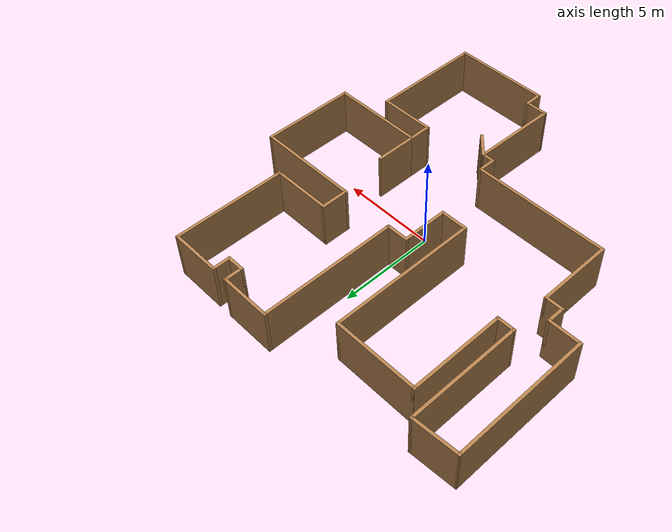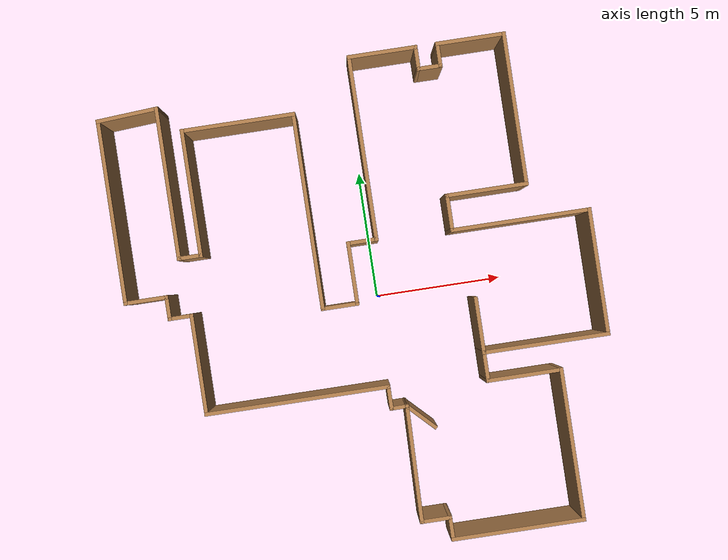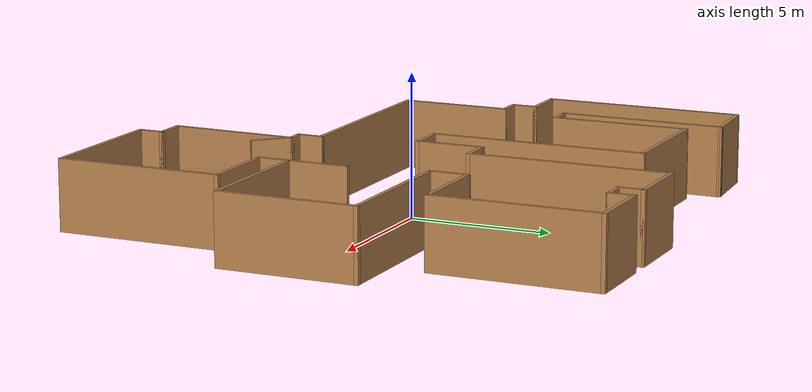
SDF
<?xml version='1.0'?>
<sdf version='1.6'>
  <model name='map_120'>
    <pose frame=''>-0.58753 -0.211595 0 0 -0 0</pose>
    <link name='Wall_12'>
      <collision name='Wall_12_Collision'>
        <geometry>
          <box>
            <size>1.25 0.15 2.5</size>
          </box>
        </geometry>
        <pose frame=''>0 0 1.25 0 -0 0</pose>
      </collision>
      <visual name='Wall_12_Visual'>
        <pose frame=''>0 0 1.25 0 -0 0</pose>
        <geometry>
          <box>
            <size>1.25 0.15 2.5</size>
          </box>
        </geometry>
        <material>
          <script>
            <uri>file://media/materials/scripts/gazebo.material</uri>
            <name>Gazebo/Wood</name>
          </script>
          <ambient>1 1 1 1</ambient>
        </material>
        <meta>
          <layer>0</layer>
        </meta>
      </visual>
      <pose frame=''>1.47736 -8.65 0 0 -0 0</pose>
    </link>
    <link name='Wall_13'>
      <collision name='Wall_13_Collision'>
        <geometry>
          <box>
            <size>1 0.15 2.5</size>
          </box>
        </geometry>
        <pose frame=''>0 0 1.25 0 -0 0</pose>
      </collision>
      <visual name='Wall_13_Visual'>
        <pose frame=''>0 0 1.25 0 -0 0</pose>
        <geometry>
          <box>
            <size>1 0.15 2.5</size>
          </box>
        </geometry>
        <material>
          <script>
            <uri>file://media/materials/scripts/gazebo.material</uri>
            <name>Gazebo/Wood</name>
          </script>
          <ambient>1 1 1 1</ambient>
        </material>
        <meta>
          <layer>0</layer>
        </meta>
      </visual>
      <pose frame=''>2.02736 -9.075 0 0 -0 -1.5708</pose>
    </link>
    <link name='Wall_14'>
      <collision name='Wall_14_Collision'>
        <geometry>
          <box>
            <size>5.25 0.15 2.5</size>
          </box>
        </geometry>
        <pose frame=''>0 0 1.25 0 -0 0</pose>
      </collision>
      <visual name='Wall_14_Visual'>
        <pose frame=''>0 0 1.25 0 -0 0</pose>
        <geometry>
          <box>
            <size>5.25 0.15 2.5</size>
          </box>
        </geometry>
        <material>
          <script>
            <uri>file://media/materials/scripts/gazebo.material</uri>
            <name>Gazebo/Wood</name>
          </script>
          <ambient>1 1 1 1</ambient>
        </material>
        <meta>
          <layer>0</layer>
        </meta>
      </visual>
      <pose frame=''>4.57736 -9.5 0 0 -0 0</pose>
    </link>
    <link name='Wall_15'>
      <collision name='Wall_15_Collision'>
        <geometry>
          <box>
            <size>6 0.15 2.5</size>
          </box>
        </geometry>
        <pose frame=''>0 0 1.25 0 -0 0</pose>
      </collision>
      <visual name='Wall_15_Visual'>
        <pose frame=''>0 0 1.25 0 -0 0</pose>
        <geometry>
          <box>
            <size>6 0.15 2.5</size>
          </box>
        </geometry>
        <material>
          <script>
            <uri>file://media/materials/scripts/gazebo.material</uri>
            <name>Gazebo/Wood</name>
          </script>
          <ambient>1 1 1 1</ambient>
        </material>
        <meta>
          <layer>0</layer>
        </meta>
      </visual>
      <pose frame=''>7.12736 -6.575 0 0 -0 1.5708</pose>
    </link>
    <link name='Wall_16'>
      <collision name='Wall_16_Collision'>
        <geometry>
          <box>
            <size>3 0.15 2.5</size>
          </box>
        </geometry>
        <pose frame=''>0 0 1.25 0 -0 0</pose>
      </collision>
      <visual name='Wall_16_Visual'>
        <pose frame=''>0 0 1.25 0 -0 0</pose>
        <geometry>
          <box>
            <size>3 0.15 2.5</size>
          </box>
        </geometry>
        <material>
          <script>
            <uri>file://media/materials/scripts/gazebo.material</uri>
            <name>Gazebo/Wood</name>
          </script>
          <ambient>1 1 1 1</ambient>
        </material>
        <meta>
          <layer>0</layer>
        </meta>
      </visual>
      <pose frame=''>5.70236 -3.65 0 0 -0 3.14159</pose>
    </link>
    <link name='Wall_17'>
      <collision name='Wall_17_Collision'>
        <geometry>
          <box>
            <size>1.25 0.15 2.5</size>
          </box>
        </geometry>
        <pose frame=''>0 0 1.25 0 -0 0</pose>
      </collision>
      <visual name='Wall_17_Visual'>
        <pose frame=''>0 0 1.25 0 -0 0</pose>
        <geometry>
          <box>
            <size>1.25 0.15 2.5</size>
          </box>
        </geometry>
        <material>
          <script>
            <uri>file://media/materials/scripts/gazebo.material</uri>
            <name>Gazebo/Wood</name>
          </script>
          <ambient>1 1 1 1</ambient>
        </material>
        <meta>
          <layer>0</layer>
        </meta>
      </visual>
      <pose frame=''>4.27736 -3.1 0 0 -0 1.5708</pose>
    </link>
    <link name='Wall_18'>
      <collision name='Wall_18_Collision'>
        <geometry>
          <box>
            <size>5 0.15 2.5</size>
          </box>
        </geometry>
        <pose frame=''>0 0 1.25 0 -0 0</pose>
      </collision>
      <visual name='Wall_18_Visual'>
        <pose frame=''>0 0 1.25 0 -0 0</pose>
        <geometry>
          <box>
            <size>5 0.15 2.5</size>
          </box>
        </geometry>
        <material>
          <script>
            <uri>file://media/materials/scripts/gazebo.material</uri>
            <name>Gazebo/Wood</name>
          </script>
          <ambient>1 1 1 1</ambient>
        </material>
        <meta>
          <layer>0</layer>
        </meta>
      </visual>
      <pose frame=''>6.70236 -2.55 0 0 -0 0</pose>
    </link>
    <link name='Wall_19'>
      <collision name='Wall_19_Collision'>
        <geometry>
          <box>
            <size>5 0.15 2.5</size>
          </box>
        </geometry>
        <pose frame=''>0 0 1.25 0 -0 0</pose>
      </collision>
      <visual name='Wall_19_Visual'>
        <pose frame=''>0 0 1.25 0 -0 0</pose>
        <geometry>
          <box>
            <size>5 0.15 2.5</size>
          </box>
        </geometry>
        <material>
          <script>
            <uri>file://media/materials/scripts/gazebo.material</uri>
            <name>Gazebo/Wood</name>
          </script>
          <ambient>1 1 1 1</ambient>
        </material>
        <meta>
          <layer>0</layer>
        </meta>
      </visual>
      <pose frame=''>9.12736 -0.125 0 0 -0 1.5708</pose>
    </link>
    <link name='Wall_20'>
      <collision name='Wall_20_Collision'>
        <geometry>
          <box>
            <size>5.5 0.15 2.5</size>
          </box>
        </geometry>
        <pose frame=''>0 0 1.25 0 -0 0</pose>
      </collision>
      <visual name='Wall_20_Visual'>
        <pose frame=''>0 0 1.25 0 -0 0</pose>
        <geometry>
          <box>
            <size>5.5 0.15 2.5</size>
          </box>
        </geometry>
        <material>
          <script>
            <uri>file://media/materials/scripts/gazebo.material</uri>
            <name>Gazebo/Wood</name>
          </script>
          <ambient>1 1 1 1</ambient>
        </material>
        <meta>
          <layer>0</layer>
        </meta>
      </visual>
      <pose frame=''>6.45236 2.3 0 0 -0 3.14159</pose>
    </link>
    <link name='Wall_21'>
      <collision name='Wall_21_Collision'>
        <geometry>
          <box>
            <size>1.5 0.15 2.5</size>
          </box>
        </geometry>
        <pose frame=''>0 0 1.25 0 -0 0</pose>
      </collision>
      <visual name='Wall_21_Visual'>
        <pose frame=''>0 0 1.25 0 -0 0</pose>
        <geometry>
          <box>
            <size>1.5 0.15 2.5</size>
          </box>
        </geometry>
        <material>
          <script>
            <uri>file://media/materials/scripts/gazebo.material</uri>
            <name>Gazebo/Wood</name>
          </script>
          <ambient>1 1 1 1</ambient>
        </material>
        <meta>
          <layer>0</layer>
        </meta>
      </visual>
      <pose frame=''>3.77736 2.975 0 0 -0 1.5708</pose>
    </link>
    <link name='Wall_22'>
      <collision name='Wall_22_Collision'>
        <geometry>
          <box>
            <size>3.25 0.15 2.5</size>
          </box>
        </geometry>
        <pose frame=''>0 0 1.25 0 -0 0</pose>
      </collision>
      <visual name='Wall_22_Visual'>
        <pose frame=''>0 0 1.25 0 -0 0</pose>
        <geometry>
          <box>
            <size>3.25 0.15 2.5</size>
          </box>
        </geometry>
        <material>
          <script>
            <uri>file://media/materials/scripts/gazebo.material</uri>
            <name>Gazebo/Wood</name>
          </script>
          <ambient>1 1 1 1</ambient>
        </material>
        <meta>
          <layer>0</layer>
        </meta>
      </visual>
      <pose frame=''>5.32736 3.65 0 0 -0 0</pose>
    </link>
    <link name='Wall_23'>
      <collision name='Wall_23_Collision'>
        <geometry>
          <box>
            <size>6 0.15 2.5</size>
          </box>
        </geometry>
        <pose frame=''>0 0 1.25 0 -0 0</pose>
      </collision>
      <visual name='Wall_23_Visual'>
        <pose frame=''>0 0 1.25 0 -0 0</pose>
        <geometry>
          <box>
            <size>6 0.15 2.5</size>
          </box>
        </geometry>
        <material>
          <script>
            <uri>file://media/materials/scripts/gazebo.material</uri>
            <name>Gazebo/Wood</name>
          </script>
          <ambient>1 1 1 1</ambient>
        </material>
        <meta>
          <layer>0</layer>
        </meta>
      </visual>
      <pose frame=''>6.87736 6.575 0 0 -0 1.5708</pose>
    </link>
    <link name='Wall_24'>
      <collision name='Wall_24_Collision'>
        <geometry>
          <box>
            <size>2.75 0.15 2.5</size>
          </box>
        </geometry>
        <pose frame=''>0 0 1.25 0 -0 0</pose>
      </collision>
      <visual name='Wall_24_Visual'>
        <pose frame=''>0 0 1.25 0 -0 0</pose>
        <geometry>
          <box>
            <size>2.75 0.15 2.5</size>
          </box>
        </geometry>
        <material>
          <script>
            <uri>file://media/materials/scripts/gazebo.material</uri>
            <name>Gazebo/Wood</name>
          </script>
          <ambient>1 1 1 1</ambient>
        </material>
        <meta>
          <layer>0</layer>
        </meta>
      </visual>
      <pose frame=''>5.57736 9.5 0 0 -0 3.14159</pose>
    </link>
    <link name='Wall_25'>
      <collision name='Wall_25_Collision'>
        <geometry>
          <box>
            <size>1 0.15 2.5</size>
          </box>
        </geometry>
        <pose frame=''>0 0 1.25 0 -0 0</pose>
      </collision>
      <visual name='Wall_25_Visual'>
        <pose frame=''>0 0 1.25 0 -0 0</pose>
        <geometry>
          <box>
            <size>1 0.15 2.5</size>
          </box>
        </geometry>
        <material>
          <script>
            <uri>file://media/materials/scripts/gazebo.material</uri>
            <name>Gazebo/Wood</name>
          </script>
          <ambient>1 1 1 1</ambient>
        </material>
        <meta>
          <layer>0</layer>
        </meta>
      </visual>
      <pose frame=''>4.27736 9.075 0 0 -0 -1.5708</pose>
    </link>
    <link name='Wall_26'>
      <collision name='Wall_26_Collision'>
        <geometry>
          <box>
            <size>1 0.15 2.5</size>
          </box>
        </geometry>
        <pose frame=''>0 0 1.25 0 -0 0</pose>
      </collision>
      <visual name='Wall_26_Visual'>
        <pose frame=''>0 0 1.25 0 -0 0</pose>
        <geometry>
          <box>
            <size>1 0.15 2.5</size>
          </box>
        </geometry>
        <material>
          <script>
            <uri>file://media/materials/scripts/gazebo.material</uri>
            <name>Gazebo/Wood</name>
          </script>
          <ambient>1 1 1 1</ambient>
        </material>
        <meta>
          <layer>0</layer>
        </meta>
      </visual>
      <pose frame=''>3.85236 8.65 0 0 -0 3.14159</pose>
    </link>
    <link name='Wall_27'>
      <collision name='Wall_27_Collision'>
        <geometry>
          <box>
            <size>1 0.15 2.5</size>
          </box>
        </geometry>
        <pose frame=''>0 0 1.25 0 -0 0</pose>
      </collision>
      <visual name='Wall_27_Visual'>
        <pose frame=''>0 0 1.25 0 -0 0</pose>
        <geometry>
          <box>
            <size>1 0.15 2.5</size>
          </box>
        </geometry>
        <material>
          <script>
            <uri>file://media/materials/scripts/gazebo.material</uri>
            <name>Gazebo/Wood</name>
          </script>
          <ambient>1 1 1 1</ambient>
        </material>
        <meta>
          <layer>0</layer>
        </meta>
      </visual>
      <pose frame=''>3.42736 9.075 0 0 -0 1.5708</pose>
    </link>
    <link name='Wall_28'>
      <collision name='Wall_28_Collision'>
        <geometry>
          <box>
            <size>2.75 0.15 2.5</size>
          </box>
        </geometry>
        <pose frame=''>0 0 1.25 0 -0 0</pose>
      </collision>
      <visual name='Wall_28_Visual'>
        <pose frame=''>0 0 1.25 0 -0 0</pose>
        <geometry>
          <box>
            <size>2.75 0.15 2.5</size>
          </box>
        </geometry>
        <material>
          <script>
            <uri>file://media/materials/scripts/gazebo.material</uri>
            <name>Gazebo/Wood</name>
          </script>
          <ambient>1 1 1 1</ambient>
        </material>
        <meta>
          <layer>0</layer>
        </meta>
      </visual>
      <pose frame=''>2.12736 9.5 0 0 -0 3.14159</pose>
    </link>
    <link name='Wall_29'>
      <collision name='Wall_29_Collision'>
        <geometry>
          <box>
            <size>7.25 0.15 2.5</size>
          </box>
        </geometry>
        <pose frame=''>0 0 1.25 0 -0 0</pose>
      </collision>
      <visual name='Wall_29_Visual'>
        <pose frame=''>0 0 1.25 0 -0 0</pose>
        <geometry>
          <box>
            <size>7.25 0.15 2.5</size>
          </box>
        </geometry>
        <material>
          <script>
            <uri>file://media/materials/scripts/gazebo.material</uri>
            <name>Gazebo/Wood</name>
          </script>
          <ambient>1 1 1 1</ambient>
        </material>
        <meta>
          <layer>0</layer>
        </meta>
      </visual>
      <pose frame=''>0.827361 5.95 0 0 -0 -1.5708</pose>
    </link>
    <link name='Wall_30'>
      <collision name='Wall_30_Collision'>
        <geometry>
          <box>
            <size>1.25 0.15 2.5</size>
          </box>
        </geometry>
        <pose frame=''>0 0 1.25 0 -0 0</pose>
      </collision>
      <visual name='Wall_30_Visual'>
        <pose frame=''>0 0 1.25 0 -0 0</pose>
        <geometry>
          <box>
            <size>1.25 0.15 2.5</size>
          </box>
        </geometry>
        <material>
          <script>
            <uri>file://media/materials/scripts/gazebo.material</uri>
            <name>Gazebo/Wood</name>
          </script>
          <ambient>1 1 1 1</ambient>
        </material>
        <meta>
          <layer>0</layer>
        </meta>
      </visual>
      <pose frame=''>0.277361 2.4 0 0 -0 3.14159</pose>
    </link>
    <link name='Wall_31'>
      <collision name='Wall_31_Collision'>
        <geometry>
          <box>
            <size>2.5 0.15 2.5</size>
          </box>
        </geometry>
        <pose frame=''>0 0 1.25 0 -0 0</pose>
      </collision>
      <visual name='Wall_31_Visual'>
        <pose frame=''>0 0 1.25 0 -0 0</pose>
        <geometry>
          <box>
            <size>2.5 0.15 2.5</size>
          </box>
        </geometry>
        <material>
          <script>
            <uri>file://media/materials/scripts/gazebo.material</uri>
            <name>Gazebo/Wood</name>
          </script>
          <ambient>1 1 1 1</ambient>
        </material>
        <meta>
          <layer>0</layer>
        </meta>
      </visual>
      <pose frame=''>-0.272639 1.225 0 0 -0 -1.5708</pose>
    </link>
    <link name='Wall_32'>
      <collision name='Wall_32_Collision'>
        <geometry>
          <box>
            <size>1.5 0.15 2.5</size>
          </box>
        </geometry>
        <pose frame=''>0 0 1.25 0 -0 0</pose>
      </collision>
      <visual name='Wall_32_Visual'>
        <pose frame=''>0 0 1.25 0 -0 0</pose>
        <geometry>
          <box>
            <size>1.5 0.15 2.5</size>
          </box>
        </geometry>
        <material>
          <script>
            <uri>file://media/materials/scripts/gazebo.material</uri>
            <name>Gazebo/Wood</name>
          </script>
          <ambient>1 1 1 1</ambient>
        </material>
        <meta>
          <layer>0</layer>
        </meta>
      </visual>
      <pose frame=''>-0.947639 0.05 0 0 -0 3.14159</pose>
    </link>
    <link name='Wall_36'>
      <collision name='Wall_36_Collision'>
        <geometry>
          <box>
            <size>1 0.15 2.5</size>
          </box>
        </geometry>
        <pose frame=''>0 0 1.25 0 -0 0</pose>
      </collision>
      <visual name='Wall_36_Visual'>
        <pose frame=''>0 0 1.25 0 -0 0</pose>
        <geometry>
          <box>
            <size>1 0.15 2.5</size>
          </box>
        </geometry>
        <material>
          <script>
            <uri>file://media/materials/scripts/gazebo.material</uri>
            <name>Gazebo/Wood</name>
          </script>
          <ambient>1 1 1 1</ambient>
        </material>
        <meta>
          <layer>0</layer>
        </meta>
      </visual>
      <pose frame=''>-6.39764 2.8 0 0 -0 3.14159</pose>
    </link>
    <link name='Wall_37'>
      <collision name='Wall_37_Collision'>
        <geometry>
          <box>
            <size>6 0.15 2.5</size>
          </box>
        </geometry>
        <pose frame=''>0 0 1.25 0 -0 0</pose>
      </collision>
      <visual name='Wall_37_Visual'>
        <pose frame=''>0 0 1.25 0 -0 0</pose>
        <geometry>
          <box>
            <size>6 0.15 2.5</size>
          </box>
        </geometry>
        <material>
          <script>
            <uri>file://media/materials/scripts/gazebo.material</uri>
            <name>Gazebo/Wood</name>
          </script>
          <ambient>1 1 1 1</ambient>
        </material>
        <meta>
          <layer>0</layer>
        </meta>
      </visual>
      <pose frame=''>-6.82264 5.725 0 0 -0 1.5708</pose>
    </link>
    <link name='Wall_40'>
      <collision name='Wall_40_Collision'>
        <geometry>
          <box>
            <size>2.45489 0.15 2.5</size>
          </box>
        </geometry>
        <pose frame=''>0 0 1.25 0 -0 0</pose>
      </collision>
      <visual name='Wall_40_Visual'>
        <pose frame=''>0 0 1.25 0 -0 0</pose>
        <geometry>
          <box>
            <size>2.45489 0.15 2.5</size>
          </box>
        </geometry>
        <material>
          <script>
            <uri>file://media/materials/scripts/gazebo.material</uri>
            <name>Gazebo/Wood</name>
          </script>
          <ambient>1 1 1 1</ambient>
        </material>
        <meta>
          <layer>0</layer>
        </meta>
      </visual>
      <pose frame=''>-7.97264 8.575 0 0 -0 -3.07647</pose>
    </link>
    <link name='Wall_42'>
      <collision name='Wall_42_Collision'>
        <geometry>
          <box>
            <size>2.25 0.15 2.5</size>
          </box>
        </geometry>
        <pose frame=''>0 0 1.25 0 -0 0</pose>
      </collision>
      <visual name='Wall_42_Visual'>
        <pose frame=''>0 0 1.25 0 -0 0</pose>
        <geometry>
          <box>
            <size>2.25 0.15 2.5</size>
          </box>
        </geometry>
        <material>
          <script>
            <uri>file://media/materials/scripts/gazebo.material</uri>
            <name>Gazebo/Wood</name>
          </script>
          <ambient>1 1 1 1</ambient>
        </material>
        <meta>
          <layer>0</layer>
        </meta>
      </visual>
      <pose frame=''>4.27736 -1.5 0 0 -0 1.5708</pose>
    </link>
    <link name='Wall_44'>
      <collision name='Wall_44_Collision'>
        <geometry>
          <box>
            <size>7.25 0.15 2.5</size>
          </box>
        </geometry>
        <pose frame=''>0 0 1.25 0 -0 0</pose>
      </collision>
      <visual name='Wall_44_Visual'>
        <pose frame=''>0 0 1.25 0 -0 0</pose>
        <geometry>
          <box>
            <size>7.25 0.15 2.5</size>
          </box>
        </geometry>
        <material>
          <script>
            <uri>file://media/materials/scripts/gazebo.material</uri>
            <name>Gazebo/Wood</name>
          </script>
          <ambient>1 1 1 1</ambient>
        </material>
        <meta>
          <layer>0</layer>
        </meta>
      </visual>
      <pose frame=''>-3.12264 -3.3 0 0 -0 0</pose>
    </link>
    <link name='Wall_45'>
      <collision name='Wall_45_Collision'>
        <geometry>
          <box>
            <size>1 0.15 2.5</size>
          </box>
        </geometry>
        <pose frame=''>0 0 1.25 0 -0 0</pose>
      </collision>
      <visual name='Wall_45_Visual'>
        <pose frame=''>0 0 1.25 0 -0 0</pose>
        <geometry>
          <box>
            <size>1 0.15 2.5</size>
          </box>
        </geometry>
        <material>
          <script>
            <uri>file://media/materials/scripts/gazebo.material</uri>
            <name>Gazebo/Wood</name>
          </script>
          <ambient>1 1 1 1</ambient>
        </material>
        <meta>
          <layer>0</layer>
        </meta>
      </visual>
      <pose frame=''>0.427361 -3.725 0 0 -0 -1.5708</pose>
    </link>
    <link name='Wall_46'>
      <collision name='Wall_46_Collision'>
        <geometry>
          <box>
            <size>0.75 0.15 2.5</size>
          </box>
        </geometry>
        <pose frame=''>0 0 1.25 0 -0 0</pose>
      </collision>
      <visual name='Wall_46_Visual'>
        <pose frame=''>0 0 1.25 0 -0 0</pose>
        <geometry>
          <box>
            <size>0.75 0.15 2.5</size>
          </box>
        </geometry>
        <material>
          <script>
            <uri>file://media/materials/scripts/gazebo.material</uri>
            <name>Gazebo/Wood</name>
          </script>
          <ambient>1 1 1 1</ambient>
        </material>
        <meta>
          <layer>0</layer>
        </meta>
      </visual>
      <pose frame=''>0.727361 -4.15 0 0 -0 0</pose>
    </link>
    <link name='Wall_47'>
      <collision name='Wall_47_Collision'>
        <geometry>
          <box>
            <size>4.65111 0.15 2.5</size>
          </box>
        </geometry>
        <pose frame=''>0 0 1.25 0 -0 0</pose>
      </collision>
      <visual name='Wall_47_Visual'>
        <pose frame=''>0 0 1.25 0 -0 0</pose>
        <geometry>
          <box>
            <size>4.65111 0.15 2.5</size>
          </box>
        </geometry>
        <material>
          <script>
            <uri>file://media/materials/scripts/gazebo.material</uri>
            <name>Gazebo/Wood</name>
          </script>
          <ambient>1 1 1 1</ambient>
        </material>
        <meta>
          <layer>0</layer>
        </meta>
      </visual>
      <pose frame=''>0.977361 -6.4 0 0 -0 -1.59302</pose>
    </link>
    <link name='Wall_49'>
      <collision name='Wall_49_Collision'>
        <geometry>
          <box>
            <size>1.5 0.15 2.5</size>
          </box>
        </geometry>
        <pose frame=''>0 0 1.25 0 -0 0</pose>
      </collision>
      <visual name='Wall_49_Visual'>
        <pose frame=''>0 0 1.25 0 -0 0</pose>
        <geometry>
          <box>
            <size>1.5 0.15 2.5</size>
          </box>
        </geometry>
        <material>
          <script>
            <uri>file://media/materials/scripts/gazebo.material</uri>
            <name>Gazebo/Wood</name>
          </script>
          <ambient>1 1 1 1</ambient>
        </material>
        <meta>
          <layer>0</layer>
        </meta>
      </visual>
      <pose frame=''>1.50466 -4.6273 0 0 -0 -0.785398</pose>
    </link>
    <link name='Wall_5'>
      <collision name='Wall_5_Collision'>
        <geometry>
          <box>
            <size>7.25 0.15 2.5</size>
          </box>
        </geometry>
        <pose frame=''>0 0 1.25 0 -0 0</pose>
      </collision>
      <visual name='Wall_5_Visual'>
        <pose frame=''>0 0 1.25 0 -0 0</pose>
        <geometry>
          <box>
            <size>7.25 0.15 2.5</size>
          </box>
        </geometry>
        <material>
          <script>
            <uri>file://media/materials/scripts/gazebo.material</uri>
            <name>Gazebo/Wood</name>
          </script>
          <ambient>1 1 1 1</ambient>
        </material>
        <meta>
          <layer>0</layer>
        </meta>
      </visual>
      <pose frame=''>-9.12264 4.95 0 0 -0 -1.5708</pose>
    </link>
    <link name='Wall_51'>
      <collision name='Wall_51_Collision'>
        <geometry>
          <box>
            <size>5 0.15 2.5</size>
          </box>
        </geometry>
        <pose frame=''>0 0 1.25 0 -0 0</pose>
      </collision>
      <visual name='Wall_51_Visual'>
        <pose frame=''>0 0 1.25 0 -0 0</pose>
        <geometry>
          <box>
            <size>5 0.15 2.5</size>
          </box>
        </geometry>
        <material>
          <script>
            <uri>file://media/materials/scripts/gazebo.material</uri>
            <name>Gazebo/Wood</name>
          </script>
          <ambient>1 1 1 1</ambient>
        </material>
        <meta>
          <layer>0</layer>
        </meta>
      </visual>
      <pose frame=''>-5.97264 5.225 0 0 -0 1.5708</pose>
    </link>
    <link name='Wall_52'>
      <collision name='Wall_52_Collision'>
        <geometry>
          <box>
            <size>4.5 0.15 2.5</size>
          </box>
        </geometry>
        <pose frame=''>0 0 1.25 0 -0 0</pose>
      </collision>
      <visual name='Wall_52_Visual'>
        <pose frame=''>0 0 1.25 0 -0 0</pose>
        <geometry>
          <box>
            <size>4.5 0.15 2.5</size>
          </box>
        </geometry>
        <material>
          <script>
            <uri>file://media/materials/scripts/gazebo.material</uri>
            <name>Gazebo/Wood</name>
          </script>
          <ambient>1 1 1 1</ambient>
        </material>
        <meta>
          <layer>0</layer>
        </meta>
      </visual>
      <pose frame=''>-3.79764 7.65 0 0 -0 0</pose>
    </link>
    <link name='Wall_53'>
      <collision name='Wall_53_Collision'>
        <geometry>
          <box>
            <size>7.75 0.15 2.5</size>
          </box>
        </geometry>
        <pose frame=''>0 0 1.25 0 -0 0</pose>
      </collision>
      <visual name='Wall_53_Visual'>
        <pose frame=''>0 0 1.25 0 -0 0</pose>
        <geometry>
          <box>
            <size>7.75 0.15 2.5</size>
          </box>
        </geometry>
        <material>
          <script>
            <uri>file://media/materials/scripts/gazebo.material</uri>
            <name>Gazebo/Wood</name>
          </script>
          <ambient>1 1 1 1</ambient>
        </material>
        <meta>
          <layer>0</layer>
        </meta>
      </visual>
      <pose frame=''>-1.62264 3.85 0 0 -0 -1.5708</pose>
    </link>
    <link name='Wall_6'>
      <collision name='Wall_6_Collision'>
        <geometry>
          <box>
            <size>1.75 0.15 2.5</size>
          </box>
        </geometry>
        <pose frame=''>0 0 1.25 0 -0 0</pose>
      </collision>
      <visual name='Wall_6_Visual'>
        <pose frame=''>0 0 1.25 0 -0 0</pose>
        <geometry>
          <box>
            <size>1.75 0.15 2.5</size>
          </box>
        </geometry>
        <material>
          <script>
            <uri>file://media/materials/scripts/gazebo.material</uri>
            <name>Gazebo/Wood</name>
          </script>
          <ambient>1 1 1 1</ambient>
        </material>
        <meta>
          <layer>0</layer>
        </meta>
      </visual>
      <pose frame=''>-8.32264 1.4 0 0 -0 0</pose>
    </link>
    <link name='Wall_7'>
      <collision name='Wall_7_Collision'>
        <geometry>
          <box>
            <size>1 0.15 2.5</size>
          </box>
        </geometry>
        <pose frame=''>0 0 1.25 0 -0 0</pose>
      </collision>
      <visual name='Wall_7_Visual'>
        <pose frame=''>0 0 1.25 0 -0 0</pose>
        <geometry>
          <box>
            <size>1 0.15 2.5</size>
          </box>
        </geometry>
        <material>
          <script>
            <uri>file://media/materials/scripts/gazebo.material</uri>
            <name>Gazebo/Wood</name>
          </script>
          <ambient>1 1 1 1</ambient>
        </material>
        <meta>
          <layer>0</layer>
        </meta>
      </visual>
      <pose frame=''>-7.52264 0.975 0 0 -0 -1.5708</pose>
    </link>
    <link name='Wall_8'>
      <collision name='Wall_8_Collision'>
        <geometry>
          <box>
            <size>1 0.15 2.5</size>
          </box>
        </geometry>
        <pose frame=''>0 0 1.25 0 -0 0</pose>
      </collision>
      <visual name='Wall_8_Visual'>
        <pose frame=''>0 0 1.25 0 -0 0</pose>
        <geometry>
          <box>
            <size>1 0.15 2.5</size>
          </box>
        </geometry>
        <material>
          <script>
            <uri>file://media/materials/scripts/gazebo.material</uri>
            <name>Gazebo/Wood</name>
          </script>
          <ambient>1 1 1 1</ambient>
        </material>
        <meta>
          <layer>0</layer>
        </meta>
      </visual>
      <pose frame=''>-7.09764 0.55 0 0 -0 0</pose>
    </link>
    <link name='Wall_9'>
      <collision name='Wall_9_Collision'>
        <geometry>
          <box>
            <size>4 0.15 2.5</size>
          </box>
        </geometry>
        <pose frame=''>0 0 1.25 0 -0 0</pose>
      </collision>
      <visual name='Wall_9_Visual'>
        <pose frame=''>0 0 1.25 0 -0 0</pose>
        <geometry>
          <box>
            <size>4 0.15 2.5</size>
          </box>
        </geometry>
        <material>
          <script>
            <uri>file://media/materials/scripts/gazebo.material</uri>
            <name>Gazebo/Wood</name>
          </script>
          <ambient>1 1 1 1</ambient>
        </material>
        <meta>
          <layer>0</layer>
        </meta>
      </visual>
      <pose frame=''>-6.67264 -1.375 0 0 -0 -1.5708</pose>
    </link>
    <static>1</static>
  </model>
</sdf>
